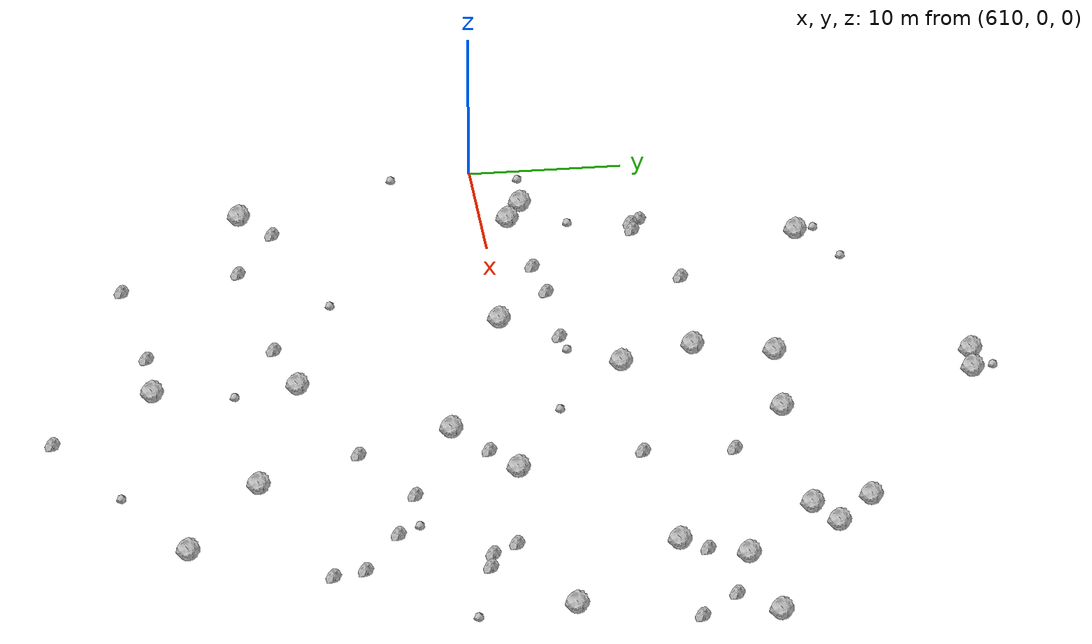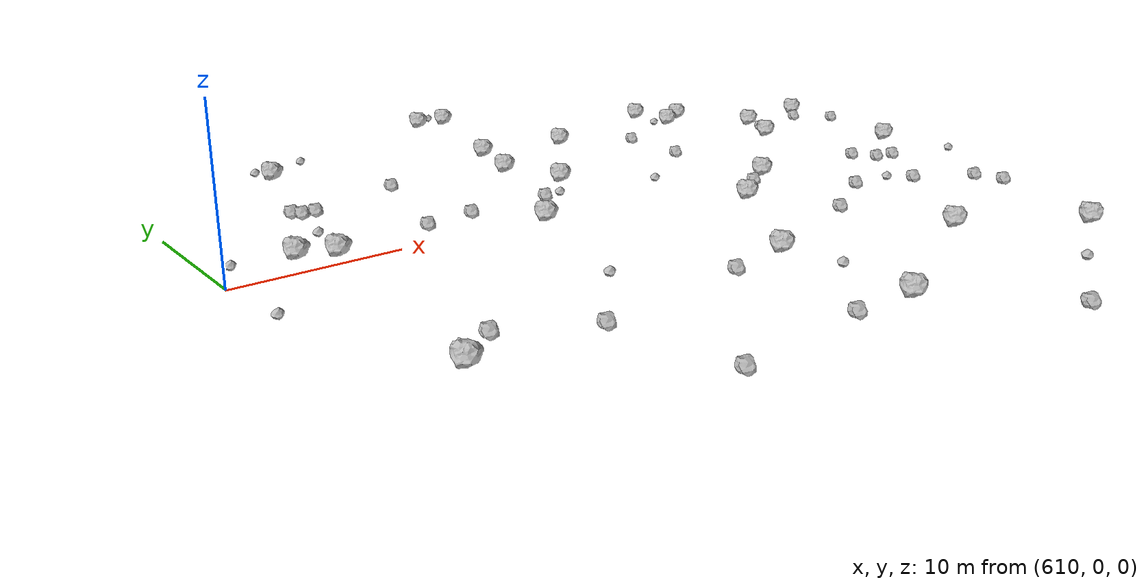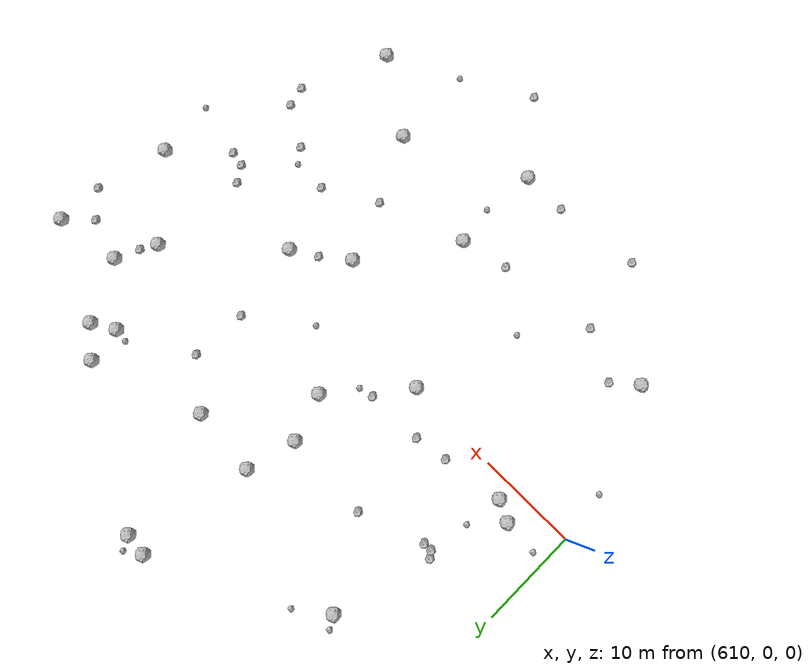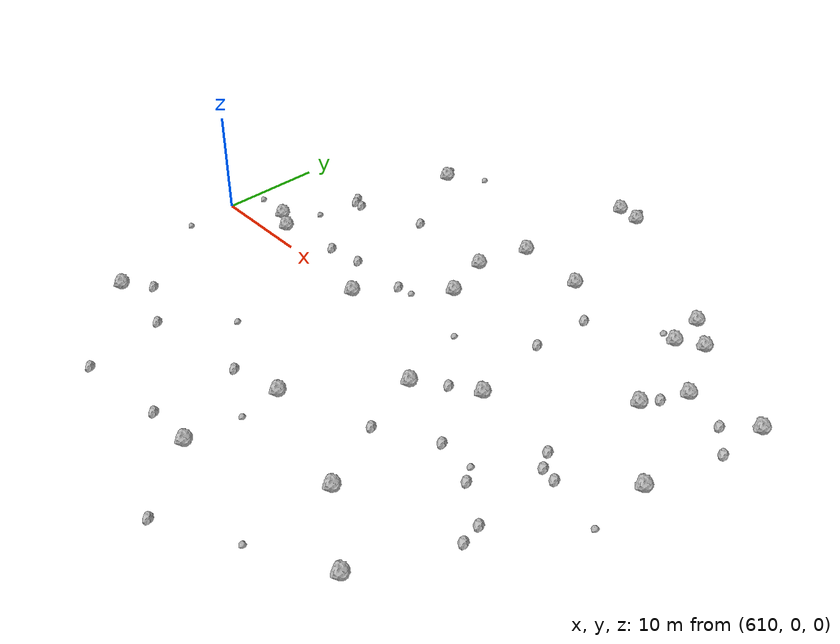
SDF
<sdf version="1.6">
 <world name="default">
  <include><uri>model://sun</uri></include>
  <model name="rock1_16_3">
   <include><uri>model://rock1</uri><pose>634.5080182882888 11.438254899332719 0.5 0 0 0</pose></include>
  </model>
  <model name="rock1_16_4">
   <include><uri>model://rock1</uri><pose>666.1319372579579 12.446447444482828 0.5 0 0 0</pose></include>
  </model>
  <model name="rock1_16_5">
   <include><uri>model://rock1</uri><pose>620.703529839665 20.080017199769564 0.5 0 0 0</pose></include>
  </model>
  <model name="rock1_16_6">
   <include><uri>model://rock1</uri><pose>648.2295444802161 -17.273564350057768 0.5 0 0 0</pose></include>
  </model>
  <model name="rock1_16_7">
   <include><uri>model://rock1</uri><pose>635.8535080432102 16.479045759410255 0.5 0 0 0</pose></include>
  </model>
  <model name="rock1_16_8">
   <include><uri>model://rock1</uri><pose>636.5108577422744 -22.920642309239874 0.5 0 0 0</pose></include>
  </model>
  <model name="rock1_16_9">
   <include><uri>model://rock1</uri><pose>653.8201122529225 19.810843989605473 0.5 0 0 0</pose></include>
  </model>
  <model name="rock1_16_10">
   <include><uri>model://rock1</uri><pose>614.8022211048315 -15.6297047981904 0.5 0 0 0</pose></include>
  </model>
  <model name="rock1_16_11">
   <include><uri>model://rock1</uri><pose>637.0943280215763 28.788387263071655 0.5 0 0 0</pose></include>
  </model>
  <model name="rock1_16_12">
   <include><uri>model://rock1</uri><pose>636.0616285209742 6.705083247052002 0.5 0 0 0</pose></include>
  </model>
  <model name="rock1_16_13">
   <include><uri>model://rock1</uri><pose>656.5660803973316 17.415893367221145 0.5 0 0 0</pose></include>
  </model>
  <model name="rock1_16_14">
   <include><uri>model://rock1</uri><pose>657.5615919265989 7.495384008761668 0.5 0 0 0</pose></include>
  </model>
  <model name="rock1_16_15">
   <include><uri>model://rock1</uri><pose>642.6979055547877 15.941609402776692 0.5 0 0 0</pose></include>
  </model>
  <model name="rock1_16_16">
   <include><uri>model://rock1</uri><pose>642.9650970255283 -4.820541343528561 0.5 0 0 0</pose></include>
  </model>
  <model name="rock1_16_17">
   <include><uri>model://rock1</uri><pose>648.0996478150763 -1.2171870521690806 0.5 0 0 0</pose></include>
  </model>
  <model name="rock1_16_18">
   <include><uri>model://rock1</uri><pose>629.8664455821337 -0.31918872483430505 0.5 0 0 0</pose></include>
  </model>
  <model name="rock1_16_19">
   <include><uri>model://rock1</uri><pose>615.0306551603229 2.7468446202143753 0.5 0 0 0</pose></include>
  </model>
  <model name="rock1_16_20">
   <include><uri>model://rock1</uri><pose>639.3780104916069 28.545025690387945 0.5 0 0 0</pose></include>
  </model>
  <model name="rock1_16_21">
   <include><uri>model://rock1</uri><pose>659.5595671561614 11.440684132378216 0.5 0 0 0</pose></include>
  </model>
  <model name="rock1_16_22">
   <include><uri>model://rock1</uri><pose>654.3056823641352 16.09753855092155 0.5 0 0 0</pose></include>
  </model>
  <model name="rock1_16_23">
   <include><uri>model://rock1</uri><pose>617.047725434759 1.7064574974407378 0.5 0 0 0</pose></include>
  </model>
  <model name="rock1_16_24">
   <include><uri>model://rock1</uri><pose>655.352353235052 -22.16727985864866 0.5 0 0 0</pose></include>
  </model>
  <model name="rock1_16_25">
   <include><uri>model://rock1</uri><pose>636.6386589437386 -13.810946413990369 0.5 0 0 0</pose></include>
  </model>
  <model name="rock1_16_26">
   <include><uri>model://rock1</uri><pose>664.0051473959843 0.4257039469970323 0.5 0 0 0</pose></include>
  </model>
  <model name="rock2_16_0">
   <include><uri>model://rock2</uri><pose>631.8551643512346 -14.873662387405826 0.3 0 0 0</pose></include>
  </model>
  <model name="rock2_16_1">
   <include><uri>model://rock2</uri><pose>645.143214074337 -10.812859448782543 0.3 0 0 0</pose></include>
  </model>
  <model name="rock2_16_2">
   <include><uri>model://rock2</uri><pose>645.5707630021451 -2.7413530552738727 0.3 0 0 0</pose></include>
  </model>
  <model name="rock2_16_3">
   <include><uri>model://rock2</uri><pose>632.0065091173875 -22.93102206532886 0.3 0 0 0</pose></include>
  </model>
  <model name="rock2_16_4">
   <include><uri>model://rock2</uri><pose>665.901931857091 7.732797934173568 0.3 0 0 0</pose></include>
  </model>
  <model name="rock2_16_5">
   <include><uri>model://rock2</uri><pose>650.2972561729301 -7.834984904184765 0.3 0 0 0</pose></include>
  </model>
  <model name="rock2_16_6">
   <include><uri>model://rock2</uri><pose>654.6916467406853 -9.324698714101125 0.3 0 0 0</pose></include>
  </model>
  <model name="rock2_16_7">
   <include><uri>model://rock2</uri><pose>659.0152393468846 -13.703241753249888 0.3 0 0 0</pose></include>
  </model>
  <model name="rock2_16_8">
   <include><uri>model://rock2</uri><pose>617.1191174902381 -13.667936879023493 0.3 0 0 0</pose></include>
  </model>
  <model name="rock2_16_9">
   <include><uri>model://rock2</uri><pose>626.5101944418313 3.103455210490459 0.3 0 0 0</pose></include>
  </model>
  <model name="rock2_16_10">
   <include><uri>model://rock2</uri><pose>625.5972617939519 11.904420587608492 0.3 0 0 0</pose></include>
  </model>
  <model name="rock2_16_11">
   <include><uri>model://rock2</uri><pose>656.5759238394845 -2.310628736721579 0.3 0 0 0</pose></include>
  </model>
  <model name="rock2_16_12">
   <include><uri>model://rock2</uri><pose>623.432405839822 -23.885758169024378 0.3 0 0 0</pose></include>
  </model>
  <model name="rock2_16_13">
   <include><uri>model://rock2</uri><pose>659.0380309766587 -4.183021039451081 0.3 0 0 0</pose></include>
  </model>
  <model name="rock2_16_14">
   <include><uri>model://rock2</uri><pose>618.2730335833122 9.615209168549612 0.3 0 0 0</pose></include>
  </model>
  <model name="rock2_16_15">
   <include><uri>model://rock2</uri><pose>658.4824630323337 9.091340207652337 0.3 0 0 0</pose></include>
  </model>
  <model name="rock2_16_16">
   <include><uri>model://rock2</uri><pose>621.9298494409048 -16.278445761152096 0.3 0 0 0</pose></include>
  </model>
  <model name="rock2_16_17">
   <include><uri>model://rock2</uri><pose>663.7059874740986 10.114559320671923 0.3 0 0 0</pose></include>
  </model>
  <model name="rock2_16_18">
   <include><uri>model://rock2</uri><pose>657.5606903860627 -3.869847581732813 0.3 0 0 0</pose></include>
  </model>
  <model name="rock2_16_19">
   <include><uri>model://rock2</uri><pose>632.2376630514483 3.25834592917883 0.3 0 0 0</pose></include>
  </model>
  <model name="rock2_16_20">
   <include><uri>model://rock2</uri><pose>617.8486542020977 10.210096270422802 0.3 0 0 0</pose></include>
  </model>
  <model name="rock2_16_21">
   <include><uri>model://rock2</uri><pose>623.1589727093728 2.603776963399646 0.3 0 0 0</pose></include>
  </model>
  <model name="rock2_16_22">
   <include><uri>model://rock2</uri><pose>658.5340509284839 -11.707606943266548 0.3 0 0 0</pose></include>
  </model>
  <model name="rock2_16_23">
   <include><uri>model://rock2</uri><pose>641.783619964377 -29.489621822837364 0.3 0 0 0</pose></include>
  </model>
  <model name="rock2_16_24">
   <include><uri>model://rock2</uri><pose>619.1633971096071 9.609853466195744 0.3 0 0 0</pose></include>
  </model>
  <model name="rock2_16_25">
   <include><uri>model://rock2</uri><pose>646.7558032982736 6.680838116158235 0.3 0 0 0</pose></include>
  </model>
  <model name="rock2_16_26">
   <include><uri>model://rock2</uri><pose>647.0992314966937 12.352373521571245 0.3 0 0 0</pose></include>
  </model>
  <model name="rock3_16_0">
   <include><uri>model://rock3</uri><pose>652.8779771540031 16.29732214762857 0.2 0 0 0</pose></include>
  </model>
  <model name="rock3_16_1">
   <include><uri>model://rock3</uri><pose>633.6445498041774 3.5468125936875055 0.2 0 0 0</pose></include>
  </model>
  <model name="rock3_16_2">
   <include><uri>model://rock3</uri><pose>637.114517061917 -17.809085767202788 0.2 0 0 0</pose></include>
  </model>
  <model name="rock3_16_3">
   <include><uri>model://rock3</uri><pose>653.6257300596787 -7.929189216671546 0.2 0 0 0</pose></include>
  </model>
  <model name="rock3_16_4">
   <include><uri>model://rock3</uri><pose>664.338667887676 -5.540013368288733 0.2 0 0 0</pose></include>
  </model>
  <model name="rock3_16_5">
   <include><uri>model://rock3</uri><pose>611.3484181611569 2.9996453818444593 0.2 0 0 0</pose></include>
  </model>
  <model name="rock3_16_6">
   <include><uri>model://rock3</uri><pose>626.4633187628729 -10.820915994627075 0.2 0 0 0</pose></include>
  </model>
  <model name="rock3_16_7">
   <include><uri>model://rock3</uri><pose>640.8752530574335 2.225546254640122 0.2 0 0 0</pose></include>
  </model>
  <model name="rock3_16_8">
   <include><uri>model://rock3</uri><pose>623.7707282916746 22.53025053450547 0.2 0 0 0</pose></include>
  </model>
  <model name="rock3_16_9">
   <include><uri>model://rock3</uri><pose>617.5069892266931 5.543402804329176 0.2 0 0 0</pose></include>
  </model>
  <model name="rock3_16_10">
   <include><uri>model://rock3</uri><pose>648.4157476344087 -25.72645930271772 0.2 0 0 0</pose></include>
  </model>
  <model name="rock3_16_11">
   <include><uri>model://rock3</uri><pose>610.5801368861921 -5.277748658406715 0.2 0 0 0</pose></include>
  </model>
  <model name="rock3_16_12">
   <include><uri>model://rock3</uri><pose>638.6241448814917 29.941247405790122 0.2 0 0 0</pose></include>
  </model>
  <model name="rock3_16_13">
   <include><uri>model://rock3</uri><pose>619.8963902311847 21.344773855401925 0.2 0 0 0</pose></include>
  </model>
 </world>
</sdf>
